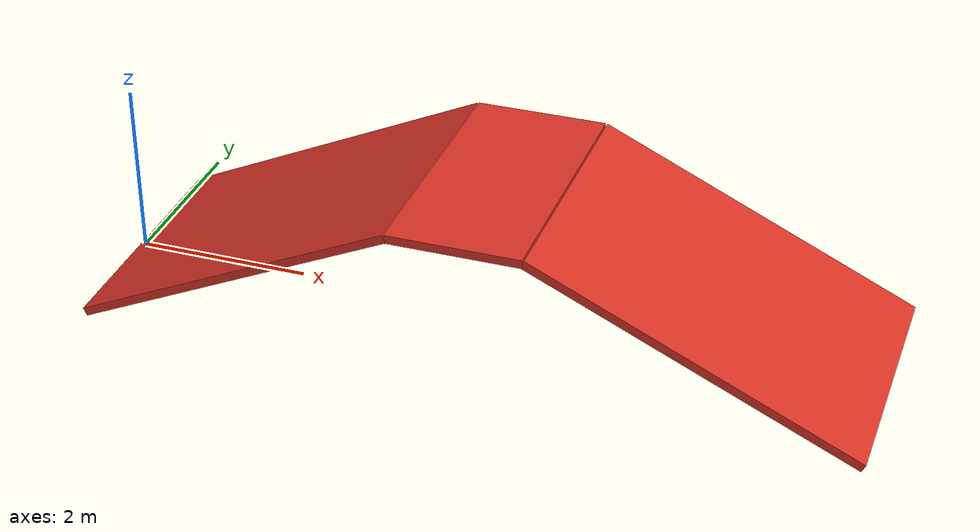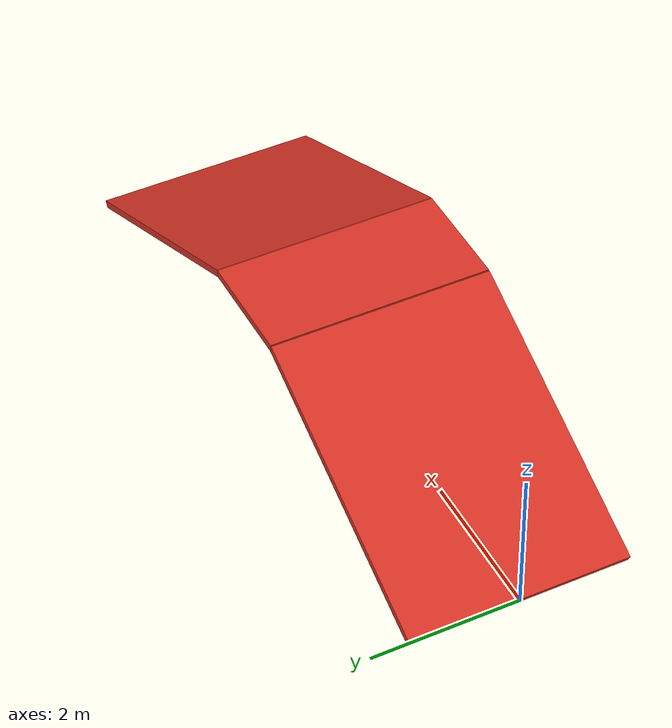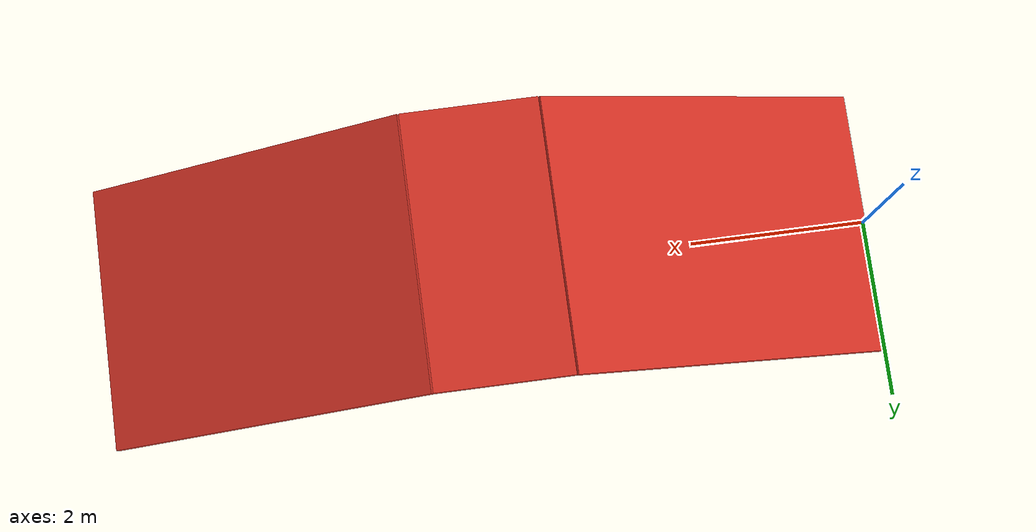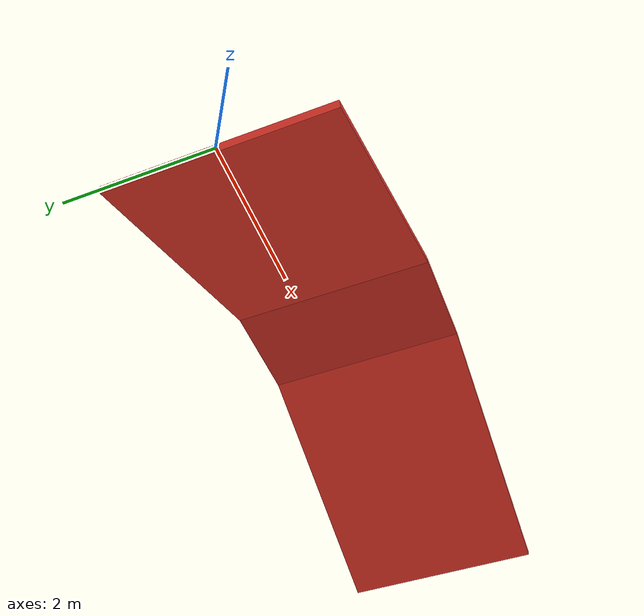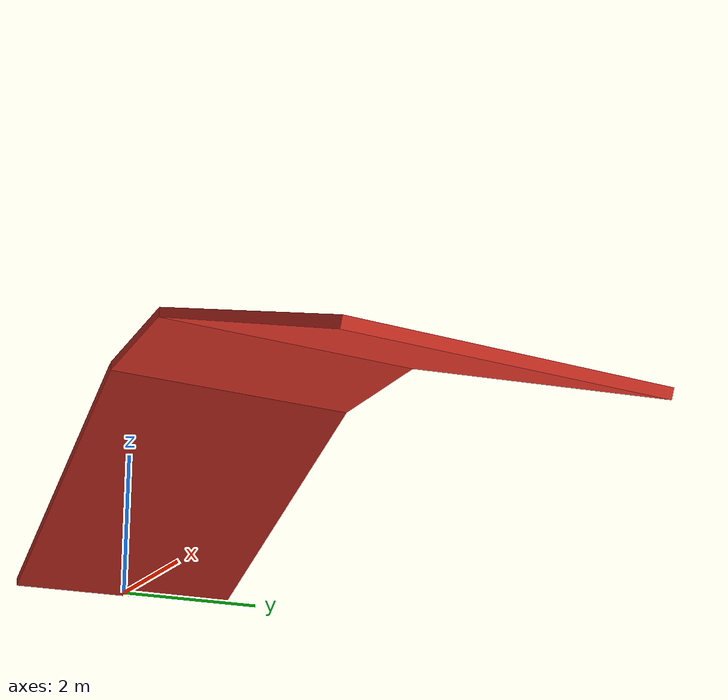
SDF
<?xml version="1.0" ?>
<sdf version="1.9">
  <model name="ramp_025">
    <static>true</static>
    <link name="link">

      <!-- 각도: 25.0도 / 경사면 길이: 4.0m / 높이(H)=1.6905m / 수평거리(D)=3.6252m -->

      <collision name="up_collision">
        <pose>1.8126 0 0.8452 0 -0.436332 0</pose>
        <geometry><box><size>4.0 3.0 0.1</size></box></geometry>
      </collision>
      <visual name="up_visual">
        <pose>1.8126 0 0.8452 0 -0.436332 0</pose>
        <geometry><box><size>4.0 3.0 0.1</size></box></geometry>
        <material><ambient>0.8 0.15 0.1 1</ambient><diffuse>0.85 0.2 0.15 1</diffuse></material>
      </visual>

      <collision name="flat_collision">
        <pose>4.3752 0 1.6905 0 0 0</pose>
        <geometry><box><size>1.5 3.0 0.1</size></box></geometry>
      </collision>
      <visual name="flat_visual">
        <pose>4.3752 0 1.6905 0 0 0</pose>
        <geometry><box><size>1.5 3.0 0.1</size></box></geometry>
        <material><ambient>0.8 0.15 0.1 1</ambient><diffuse>0.85 0.2 0.15 1</diffuse></material>
      </visual>

      <collision name="down_collision">
        <pose>6.9378 0 0.8452 0 0.436332 0</pose>
        <geometry><box><size>4.0 3.0 0.1</size></box></geometry>
      </collision>
      <visual name="down_visual">
        <pose>6.9378 0 0.8452 0 0.436332 0</pose>
        <geometry><box><size>4.0 3.0 0.1</size></box></geometry>
        <material><ambient>0.8 0.15 0.1 1</ambient><diffuse>0.85 0.2 0.15 1</diffuse></material>
      </visual>

    </link>
  </model>
</sdf>
